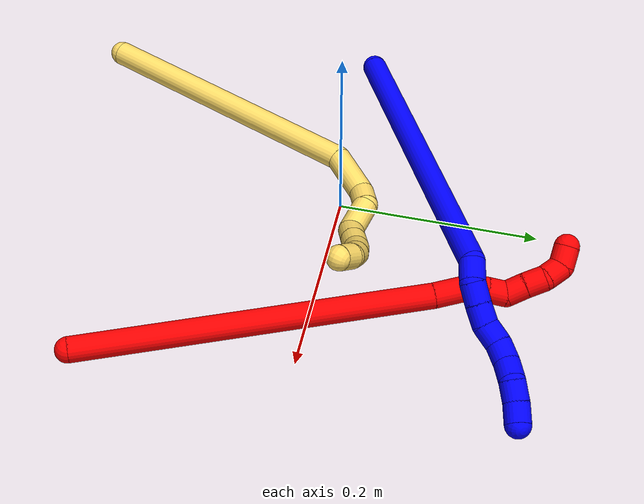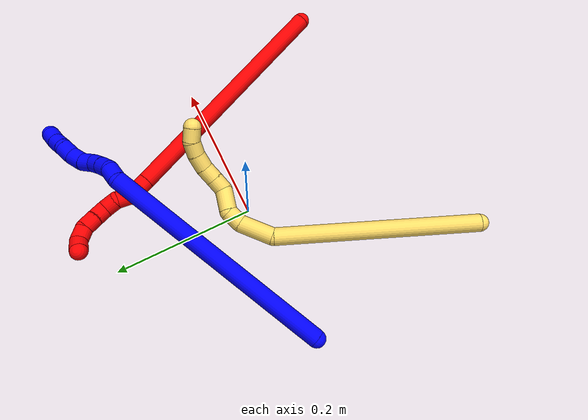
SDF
<sdf version="1.7">
 <world name="default">
  <model name="photoneo_s_sensor">
   <static>1</static>
   <pose>0 0 2 1.57079 1.57079 3.14159</pose>
   <link name="link">
    <inertial><mass>0.1</mass></inertial>
    <sensor name="sensor" type="depth">
     <update_rate>30</update_rate>
     <camera>
      <horizontal_fov>1.22</horizontal_fov>
      <image><width>1920</width><height>1200</height><format>B8G8R8</format></image>
      <clip><near>0.1</near><far>4</far></clip>
      <depth_camera><output>points</output></depth_camera>
     </camera>
     <plugin name="camera_plugin" filename="libgazebo_ros_depth_camera.so">
      <baseline>0.2</baseline>
      <alwaysOn>1</alwaysOn>
      <updateRate>0.0</updateRate>
      <cameraName>camera_ir</cameraName>
      <imageTopicName>/camera/color/image_raw</imageTopicName>
      <cameraInfoTopicName>/camera/color/camera_info</cameraInfoTopicName>
      <depthImageTopicName>/camera/depth/image_raw</depthImageTopicName>
      <depthImageCameraInfoTopicName>/camera/depth/camera_info</depthImageCameraInfoTopicName>
      <pointCloudTopicName>/camera/depth/points</pointCloudTopicName>
      <frameName>fr_optical</frameName>
      <pointCloudCutoff>0.1</pointCloudCutoff>
      <pointCloudCutoffMax>2.0</pointCloudCutoffMax>
      <distortionK1>0</distortionK1>
      <distortionK2>0</distortionK2>
      <distortionK3>0</distortionK3>
      <distortionT1>0</distortionT1>
      <distortionT2>0</distortionT2>
      <CxPrime>0</CxPrime>
      <Cx>0</Cx>
      <Cy>0</Cy>
      <focalLength>0</focalLength>
      <hackBaseline>0</hackBaseline>
     </plugin>
    </sensor>
   </link>
  </model>
  <model name="bin">
   <static>1</static>
   <link name="bottom">
    <collision name="collision-bottom">
     <pose>0 0 -0.01 0 -0 0</pose>
     <geometry><box><size>0.8 0.6 0.02</size></box></geometry>
     <surface>
      <friction><ode><mu>100</mu><mu2>100</mu2></ode></friction>
      <contact><collide_bitmask>65535</collide_bitmask></contact>
     </surface>
    </collision>
   </link>
   <link name="west_wall">
    <collision name="collision-west_wall">
     <pose>-0.41 0 0.1 0 -0 0</pose>
     <geometry><box><size>0.02 0.6 0.2</size></box></geometry>
     <surface>
      <friction><ode><mu>100</mu><mu2>100</mu2></ode></friction>
      <contact><collide_bitmask>65535</collide_bitmask></contact>
     </surface>
    </collision>
   </link>
   <link name="east_wall">
    <collision name="collision-east_wall">
     <pose>0.41 0 0.1 0 -0 0</pose>
     <geometry><box><size>0.02 0.6 0.2</size></box></geometry>
     <surface>
      <friction><ode><mu>100</mu><mu2>100</mu2></ode></friction>
      <contact><collide_bitmask>65535</collide_bitmask></contact>
     </surface>
    </collision>
   </link>
   <link name="south_wall">
    <collision name="collision-south_wall">
     <pose>0 -0.31 0.1 0 -0 0</pose>
     <geometry><box><size>0.8 0.02 0.2</size></box></geometry>
     <surface>
      <friction><ode><mu>100</mu><mu2>100</mu2></ode></friction>
      <contact><collide_bitmask>65535</collide_bitmask></contact>
     </surface>
    </collision>
   </link>
   <link name="north_wall">
    <collision name="collision-north_wall">
     <pose>0 0.31 0.1 0 -0 0</pose>
     <geometry><box><size>0.8 0.02 0.2</size></box></geometry>
     <surface>
      <friction><ode><mu>100</mu><mu2>100</mu2></ode></friction>
      <contact><collide_bitmask>65535</collide_bitmask></contact>
     </surface>
    </collision>
   </link>
  </model>
  <model name="1">
   <static>0</static>
   <link name="1">
    <collision name="collision-cylinder-e_1_1_4">
     <pose>0.005703 0.054563 0.159133 -0.330314 0.033888 -0.005649</pose>
     <geometry><cylinder><radius>0.0125</radius><length>0.336648</length></cylinder></geometry>
     <surface>
      <friction><ode><mu>1.16</mu><mu2>1.16</mu2><slip1>0</slip1><slip2>0</slip2></ode></friction>
      <contact><ode><kp>1e+06</kp><kd>1</kd><max_vel>0</max_vel><min_depth>0.001</min_depth></ode></contact>
     </surface>
    </collision>
    <visual name="visual-cylinder-e_1_1_4">
     <pose>0.005703 0.054563 0.159133 -0.330314 0.033888 -0.005649</pose>
     <geometry><cylinder><radius>0.0125</radius><length>0.336648</length></cylinder></geometry>
     <material><ambient>0 0 1 1</ambient></material>
    </visual>
    <collision name="collision-cylinder-e_2_4_5">
     <pose>0.012825 0.117011 0.325495 -0.828823 0.131842 -0.058063</pose>
     <geometry><cylinder><radius>0.0125</radius><length>0.021581</length></cylinder></geometry>
     <surface>
      <friction><ode><mu>1.16</mu><mu2>1.16</mu2><slip1>0</slip1><slip2>0</slip2></ode></friction>
      <contact><ode><kp>1e+06</kp><kd>1</kd><max_vel>0</max_vel><min_depth>0.001</min_depth></ode></contact>
     </surface>
    </collision>
    <visual name="visual-cylinder-e_2_4_5">
     <pose>0.012825 0.117011 0.325495 -0.828823 0.131842 -0.058063</pose>
     <geometry><cylinder><radius>0.0125</radius><length>0.021581</length></cylinder></geometry>
     <material><ambient>0 0 1 1</ambient></material>
    </visual>
    <collision name="collision-cylinder-e_3_5_6">
     <pose>0.011484 0.133621 0.337574 -1.06334 -0.269678 0.159245</pose>
     <geometry><cylinder><radius>0.0125</radius><length>0.020715</length></cylinder></geometry>
     <surface>
      <friction><ode><mu>1.16</mu><mu2>1.16</mu2><slip1>0</slip1><slip2>0</slip2></ode></friction>
      <contact><ode><kp>1e+06</kp><kd>1</kd><max_vel>0</max_vel><min_depth>0.001</min_depth></ode></contact>
     </surface>
    </collision>
    <visual name="visual-cylinder-e_3_5_6">
     <pose>0.011484 0.133621 0.337574 -1.06334 -0.269678 0.159245</pose>
     <geometry><cylinder><radius>0.0125</radius><length>0.020715</length></cylinder></geometry>
     <material><ambient>0 0 1 1</ambient></material>
    </visual>
    <collision name="collision-cylinder-e_4_6_7">
     <pose>0.005504 0.150555 0.34721 -1.04313 -0.326776 0.188903</pose>
     <geometry><cylinder><radius>0.0125</radius><length>0.020066</length></cylinder></geometry>
     <surface>
      <friction><ode><mu>1.16</mu><mu2>1.16</mu2><slip1>0</slip1><slip2>0</slip2></ode></friction>
      <contact><ode><kp>1e+06</kp><kd>1</kd><max_vel>0</max_vel><min_depth>0.001</min_depth></ode></contact>
     </surface>
    </collision>
    <visual name="visual-cylinder-e_4_6_7">
     <pose>0.005504 0.150555 0.34721 -1.04313 -0.326776 0.188903</pose>
     <geometry><cylinder><radius>0.0125</radius><length>0.020066</length></cylinder></geometry>
     <material><ambient>0 0 1 1</ambient></material>
    </visual>
    <collision name="collision-cylinder-e_5_7_8">
     <pose>-0.002696 0.164906 0.358583 -0.750225 -0.505043 0.202507</pose>
     <geometry><cylinder><radius>0.0125</radius><length>0.020583</length></cylinder></geometry>
     <surface>
      <friction><ode><mu>1.16</mu><mu2>1.16</mu2><slip1>0</slip1><slip2>0</slip2></ode></friction>
      <contact><ode><kp>1e+06</kp><kd>1</kd><max_vel>0</max_vel><min_depth>0.001</min_depth></ode></contact>
     </surface>
    </collision>
    <visual name="visual-cylinder-e_5_7_8">
     <pose>-0.002696 0.164906 0.358583 -0.750225 -0.505043 0.202507</pose>
     <geometry><cylinder><radius>0.0125</radius><length>0.020583</length></cylinder></geometry>
     <material><ambient>0 0 1 1</ambient></material>
    </visual>
    <collision name="collision-cylinder-e_6_8_9">
     <pose>-0.009244 0.176951 0.373323 -0.626921 -0.154556 0.050188</pose>
     <geometry><cylinder><radius>0.0125</radius><length>0.020372</length></cylinder></geometry>
     <surface>
      <friction><ode><mu>1.16</mu><mu2>1.16</mu2><slip1>0</slip1><slip2>0</slip2></ode></friction>
      <contact><ode><kp>1e+06</kp><kd>1</kd><max_vel>0</max_vel><min_depth>0.001</min_depth></ode></contact>
     </surface>
    </collision>
    <visual name="visual-cylinder-e_6_8_9">
     <pose>-0.009244 0.176951 0.373323 -0.626921 -0.154556 0.050188</pose>
     <geometry><cylinder><radius>0.0125</radius><length>0.020372</length></cylinder></geometry>
     <material><ambient>0 0 1 1</ambient></material>
    </visual>
    <collision name="collision-cylinder-e_7_9_10">
     <pose>-0.010248 0.187802 0.390148 -0.518202 0.056453 -0.014967</pose>
     <geometry><cylinder><radius>0.0125</radius><length>0.020003</length></cylinder></geometry>
     <surface>
      <friction><ode><mu>1.16</mu><mu2>1.16</mu2><slip1>0</slip1><slip2>0</slip2></ode></friction>
      <contact><ode><kp>1e+06</kp><kd>1</kd><max_vel>0</max_vel><min_depth>0.001</min_depth></ode></contact>
     </surface>
    </collision>
    <visual name="visual-cylinder-e_7_9_10">
     <pose>-0.010248 0.187802 0.390148 -0.518202 0.056453 -0.014967</pose>
     <geometry><cylinder><radius>0.0125</radius><length>0.020003</length></cylinder></geometry>
     <material><ambient>0 0 1 1</ambient></material>
    </visual>
    <collision name="collision-cylinder-e_8_10_11">
     <pose>-0.010796 0.200809 0.404636 -0.946002 -0.111456 0.057081</pose>
     <geometry><cylinder><radius>0.0125</radius><length>0.020002</length></cylinder></geometry>
     <surface>
      <friction><ode><mu>1.16</mu><mu2>1.16</mu2><slip1>0</slip1><slip2>0</slip2></ode></friction>
      <contact><ode><kp>1e+06</kp><kd>1</kd><max_vel>0</max_vel><min_depth>0.001</min_depth></ode></contact>
     </surface>
    </collision>
    <visual name="visual-cylinder-e_8_10_11">
     <pose>-0.010796 0.200809 0.404636 -0.946002 -0.111456 0.057081</pose>
     <geometry><cylinder><radius>0.0125</radius><length>0.020002</length></cylinder></geometry>
     <material><ambient>0 0 1 1</ambient></material>
    </visual>
    <collision name="collision-cylinder-e_9_11_2">
     <pose>-0.011468 0.216747 0.416619 -0.906298 0.043934 -0.021396</pose>
     <geometry><cylinder><radius>0.0125</radius><length>0.020031</length></cylinder></geometry>
     <surface>
      <friction><ode><mu>1.16</mu><mu2>1.16</mu2><slip1>0</slip1><slip2>0</slip2></ode></friction>
      <contact><ode><kp>1e+06</kp><kd>1</kd><max_vel>0</max_vel><min_depth>0.001</min_depth></ode></contact>
     </surface>
    </collision>
    <visual name="visual-cylinder-e_9_11_2">
     <pose>-0.011468 0.216747 0.416619 -0.906298 0.043934 -0.021396</pose>
     <geometry><cylinder><radius>0.0125</radius><length>0.020031</length></cylinder></geometry>
     <material><ambient>0 0 1 1</ambient></material>
    </visual>
    <collision name="collision-sphere-2">
     <pose>-0.011028 0.224623 0.42279 0 -0 0</pose>
     <geometry><sphere><radius>0.0125</radius></sphere></geometry>
     <surface>
      <friction><ode><mu>1.16</mu><mu2>1.16</mu2><slip1>0</slip1><slip2>0</slip2></ode></friction>
      <contact><ode><kp>1e+06</kp><kd>1</kd><max_vel>0</max_vel><min_depth>0.001</min_depth></ode></contact>
     </surface>
    </collision>
    <visual name="visual-sphere-2">
     <pose>-0.011028 0.224623 0.42279 0 -0 0</pose>
     <geometry><sphere><radius>0.0125</radius></sphere></geometry>
     <material><ambient>0 0 1 1</ambient></material>
    </visual>
    <collision name="collision-sphere-11">
     <pose>-0.011908 0.20887 0.410449 0 -0 0</pose>
     <geometry><sphere><radius>0.0125</radius></sphere></geometry>
     <surface>
      <friction><ode><mu>1.16</mu><mu2>1.16</mu2><slip1>0</slip1><slip2>0</slip2></ode></friction>
      <contact><ode><kp>1e+06</kp><kd>1</kd><max_vel>0</max_vel><min_depth>0.001</min_depth></ode></contact>
     </surface>
    </collision>
    <visual name="visual-sphere-11">
     <pose>-0.011908 0.20887 0.410449 0 -0 0</pose>
     <geometry><sphere><radius>0.0125</radius></sphere></geometry>
     <material><ambient>0 0 1 1</ambient></material>
    </visual>
    <collision name="collision-sphere-10">
     <pose>-0.009683 0.192748 0.398822 0 -0 0</pose>
     <geometry><sphere><radius>0.0125</radius></sphere></geometry>
     <surface>
      <friction><ode><mu>1.16</mu><mu2>1.16</mu2><slip1>0</slip1><slip2>0</slip2></ode></friction>
      <contact><ode><kp>1e+06</kp><kd>1</kd><max_vel>0</max_vel><min_depth>0.001</min_depth></ode></contact>
     </surface>
    </collision>
    <visual name="visual-sphere-10">
     <pose>-0.009683 0.192748 0.398822 0 -0 0</pose>
     <geometry><sphere><radius>0.0125</radius></sphere></geometry>
     <material><ambient>0 0 1 1</ambient></material>
    </visual>
    <collision name="collision-sphere-9">
     <pose>-0.010812 0.182856 0.381473 0 -0 0</pose>
     <geometry><sphere><radius>0.0125</radius></sphere></geometry>
     <surface>
      <friction><ode><mu>1.16</mu><mu2>1.16</mu2><slip1>0</slip1><slip2>0</slip2></ode></friction>
      <contact><ode><kp>1e+06</kp><kd>1</kd><max_vel>0</max_vel><min_depth>0.001</min_depth></ode></contact>
     </surface>
    </collision>
    <visual name="visual-sphere-9">
     <pose>-0.010812 0.182856 0.381473 0 -0 0</pose>
     <geometry><sphere><radius>0.0125</radius></sphere></geometry>
     <material><ambient>0 0 1 1</ambient></material>
    </visual>
    <collision name="collision-sphere-4">
     <pose>0.011406 0.109126 0.318266 0 -0 0</pose>
     <geometry><sphere><radius>0.0125</radius></sphere></geometry>
     <surface>
      <friction><ode><mu>1.16</mu><mu2>1.16</mu2><slip1>0</slip1><slip2>0</slip2></ode></friction>
      <contact><ode><kp>1e+06</kp><kd>1</kd><max_vel>0</max_vel><min_depth>0.001</min_depth></ode></contact>
     </surface>
    </collision>
    <visual name="visual-sphere-4">
     <pose>0.011406 0.109126 0.318266 0 -0 0</pose>
     <geometry><sphere><radius>0.0125</radius></sphere></geometry>
     <material><ambient>0 0 1 1</ambient></material>
    </visual>
    <collision name="collision-sphere-1">
     <geometry><sphere><radius>0.0125</radius></sphere></geometry>
     <surface>
      <friction><ode><mu>1.16</mu><mu2>1.16</mu2><slip1>0</slip1><slip2>0</slip2></ode></friction>
      <contact><ode><kp>1e+06</kp><kd>1</kd><max_vel>0</max_vel><min_depth>0.001</min_depth></ode></contact>
     </surface>
    </collision>
    <visual name="visual-sphere-1">
     <geometry><sphere><radius>0.0125</radius></sphere></geometry>
     <material><ambient>0 0 1 1</ambient></material>
    </visual>
    <collision name="collision-sphere-8">
     <pose>-0.007676 0.171047 0.365172 0 -0 0</pose>
     <geometry><sphere><radius>0.0125</radius></sphere></geometry>
     <surface>
      <friction><ode><mu>1.16</mu><mu2>1.16</mu2><slip1>0</slip1><slip2>0</slip2></ode></friction>
      <contact><ode><kp>1e+06</kp><kd>1</kd><max_vel>0</max_vel><min_depth>0.001</min_depth></ode></contact>
     </surface>
    </collision>
    <visual name="visual-sphere-8">
     <pose>-0.007676 0.171047 0.365172 0 -0 0</pose>
     <geometry><sphere><radius>0.0125</radius></sphere></geometry>
     <material><ambient>0 0 1 1</ambient></material>
    </visual>
    <collision name="collision-sphere-5">
     <pose>0.014243 0.124896 0.332723 0 -0 0</pose>
     <geometry><sphere><radius>0.0125</radius></sphere></geometry>
     <surface>
      <friction><ode><mu>1.16</mu><mu2>1.16</mu2><slip1>0</slip1><slip2>0</slip2></ode></friction>
      <contact><ode><kp>1e+06</kp><kd>1</kd><max_vel>0</max_vel><min_depth>0.001</min_depth></ode></contact>
     </surface>
    </collision>
    <visual name="visual-sphere-5">
     <pose>0.014243 0.124896 0.332723 0 -0 0</pose>
     <geometry><sphere><radius>0.0125</radius></sphere></geometry>
     <material><ambient>0 0 1 1</ambient></material>
    </visual>
    <collision name="collision-sphere-6">
     <pose>0.008724 0.142346 0.342426 0 -0 0</pose>
     <geometry><sphere><radius>0.0125</radius></sphere></geometry>
     <surface>
      <friction><ode><mu>1.16</mu><mu2>1.16</mu2><slip1>0</slip1><slip2>0</slip2></ode></friction>
      <contact><ode><kp>1e+06</kp><kd>1</kd><max_vel>0</max_vel><min_depth>0.001</min_depth></ode></contact>
     </surface>
    </collision>
    <visual name="visual-sphere-6">
     <pose>0.008724 0.142346 0.342426 0 -0 0</pose>
     <geometry><sphere><radius>0.0125</radius></sphere></geometry>
     <material><ambient>0 0 1 1</ambient></material>
    </visual>
    <collision name="collision-sphere-7">
     <pose>0.002283 0.158765 0.351994 0 -0 0</pose>
     <geometry><sphere><radius>0.0125</radius></sphere></geometry>
     <surface>
      <friction><ode><mu>1.16</mu><mu2>1.16</mu2><slip1>0</slip1><slip2>0</slip2></ode></friction>
      <contact><ode><kp>1e+06</kp><kd>1</kd><max_vel>0</max_vel><min_depth>0.001</min_depth></ode></contact>
     </surface>
    </collision>
    <visual name="visual-sphere-7">
     <pose>0.002283 0.158765 0.351994 0 -0 0</pose>
     <geometry><sphere><radius>0.0125</radius></sphere></geometry>
     <material><ambient>0 0 1 1</ambient></material>
    </visual>
    <inertial>
     <pose>0.003301 0.091593 0.22757 0 -0 0</pose>
     <mass>0.5</mass>
     <inertia>
      <ixx>0.003184</ixx>
      <ixy>0</ixy>
      <ixz>0</ixz>
      <iyy>0.003029</iyy>
      <iyz>0</iyz>
      <izz>-0.001117</izz>
     </inertia>
    </inertial>
   </link>
   <pose>-0.198157 -0.004172 0.011854 -1.0748 -0.347814 -1.12847</pose>
  </model>
  <model name="2">
   <static>0</static>
   <link name="2">
    <collision name="collision-cylinder-e_1_1_4">
     <pose>-0.096995 0.141886 0.027193 -1.38144 -0.591267 0.493214</pose>
     <geometry><cylinder><radius>0.0125</radius><length>0.348017</length></cylinder></geometry>
     <surface>
      <friction><ode><mu>1.16</mu><mu2>1.16</mu2><slip1>0</slip1><slip2>0</slip2></ode></friction>
      <contact><ode><kp>1e+06</kp><kd>1</kd><max_vel>0</max_vel><min_depth>0.001</min_depth></ode></contact>
     </surface>
    </collision>
    <visual name="visual-cylinder-e_1_1_4">
     <pose>-0.096995 0.141886 0.027193 -1.38144 -0.591267 0.493214</pose>
     <geometry><cylinder><radius>0.0125</radius><length>0.348017</length></cylinder></geometry>
     <material><ambient>1 0 0 1</ambient></material>
    </visual>
    <collision name="collision-cylinder-e_2_4_5">
     <pose>-0.202169 0.295216 0.058018 -1.26355 -0.598044 0.443768</pose>
     <geometry><cylinder><radius>0.0125</radius><length>0.029057</length></cylinder></geometry>
     <surface>
      <friction><ode><mu>1.16</mu><mu2>1.16</mu2><slip1>0</slip1><slip2>0</slip2></ode></friction>
      <contact><ode><kp>1e+06</kp><kd>1</kd><max_vel>0</max_vel><min_depth>0.001</min_depth></ode></contact>
     </surface>
    </collision>
    <visual name="visual-cylinder-e_2_4_5">
     <pose>-0.202169 0.295216 0.058018 -1.26355 -0.598044 0.443768</pose>
     <geometry><cylinder><radius>0.0125</radius><length>0.029057</length></cylinder></geometry>
     <material><ambient>1 0 0 1</ambient></material>
    </visual>
    <collision name="collision-cylinder-e_3_5_6">
     <pose>-0.211727 0.317009 0.06589 -1.18187 -0.122598 0.082308</pose>
     <geometry><cylinder><radius>0.0125</radius><length>0.022537</length></cylinder></geometry>
     <surface>
      <friction><ode><mu>1.16</mu><mu2>1.16</mu2><slip1>0</slip1><slip2>0</slip2></ode></friction>
      <contact><ode><kp>1e+06</kp><kd>1</kd><max_vel>0</max_vel><min_depth>0.001</min_depth></ode></contact>
     </surface>
    </collision>
    <visual name="visual-cylinder-e_3_5_6">
     <pose>-0.211727 0.317009 0.06589 -1.18187 -0.122598 0.082308</pose>
     <geometry><cylinder><radius>0.0125</radius><length>0.022537</length></cylinder></geometry>
     <material><ambient>1 0 0 1</ambient></material>
    </visual>
    <collision name="collision-cylinder-e_4_6_7">
     <pose>-0.216669 0.3367 0.068969 -1.69459 -0.36187 0.408443</pose>
     <geometry><cylinder><radius>0.0125</radius><length>0.020131</length></cylinder></geometry>
     <surface>
      <friction><ode><mu>1.16</mu><mu2>1.16</mu2><slip1>0</slip1><slip2>0</slip2></ode></friction>
      <contact><ode><kp>1e+06</kp><kd>1</kd><max_vel>0</max_vel><min_depth>0.001</min_depth></ode></contact>
     </surface>
    </collision>
    <visual name="visual-cylinder-e_4_6_7">
     <pose>-0.216669 0.3367 0.068969 -1.69459 -0.36187 0.408443</pose>
     <geometry><cylinder><radius>0.0125</radius><length>0.020131</length></cylinder></geometry>
     <material><ambient>1 0 0 1</ambient></material>
    </visual>
    <collision name="collision-cylinder-e_5_7_8">
     <pose>-0.225619 0.352929 0.072687 -0.954333 -0.567995 0.299559</pose>
     <geometry><cylinder><radius>0.0125</radius><length>0.020029</length></cylinder></geometry>
     <surface>
      <friction><ode><mu>1.16</mu><mu2>1.16</mu2><slip1>0</slip1><slip2>0</slip2></ode></friction>
      <contact><ode><kp>1e+06</kp><kd>1</kd><max_vel>0</max_vel><min_depth>0.001</min_depth></ode></contact>
     </surface>
    </collision>
    <visual name="visual-cylinder-e_5_7_8">
     <pose>-0.225619 0.352929 0.072687 -0.954333 -0.567995 0.299559</pose>
     <geometry><cylinder><radius>0.0125</radius><length>0.020029</length></cylinder></geometry>
     <material><ambient>1 0 0 1</ambient></material>
    </visual>
    <collision name="collision-cylinder-e_6_8_9">
     <pose>-0.236511 0.367056 0.081752 -1.04669 -0.582209 0.342379</pose>
     <geometry><cylinder><radius>0.0125</radius><length>0.02002</length></cylinder></geometry>
     <surface>
      <friction><ode><mu>1.16</mu><mu2>1.16</mu2><slip1>0</slip1><slip2>0</slip2></ode></friction>
      <contact><ode><kp>1e+06</kp><kd>1</kd><max_vel>0</max_vel><min_depth>0.001</min_depth></ode></contact>
     </surface>
    </collision>
    <visual name="visual-cylinder-e_6_8_9">
     <pose>-0.236511 0.367056 0.081752 -1.04669 -0.582209 0.342379</pose>
     <geometry><cylinder><radius>0.0125</radius><length>0.02002</length></cylinder></geometry>
     <material><ambient>1 0 0 1</ambient></material>
    </visual>
    <collision name="collision-cylinder-e_7_9_10">
     <pose>-0.250334 0.37913 0.088871 -1.02536 -0.973641 0.57913</pose>
     <geometry><cylinder><radius>0.0125</radius><length>0.020121</length></cylinder></geometry>
     <surface>
      <friction><ode><mu>1.16</mu><mu2>1.16</mu2><slip1>0</slip1><slip2>0</slip2></ode></friction>
      <contact><ode><kp>1e+06</kp><kd>1</kd><max_vel>0</max_vel><min_depth>0.001</min_depth></ode></contact>
     </surface>
    </collision>
    <visual name="visual-cylinder-e_7_9_10">
     <pose>-0.250334 0.37913 0.088871 -1.02536 -0.973641 0.57913</pose>
     <geometry><cylinder><radius>0.0125</radius><length>0.020121</length></cylinder></geometry>
     <material><ambient>1 0 0 1</ambient></material>
    </visual>
    <collision name="collision-cylinder-e_8_10_2">
     <pose>-0.265964 0.382803 0.098594 0.169744 -0.815198 -0.073435</pose>
     <geometry><cylinder><radius>0.0125</radius><length>0.020088</length></cylinder></geometry>
     <surface>
      <friction><ode><mu>1.16</mu><mu2>1.16</mu2><slip1>0</slip1><slip2>0</slip2></ode></friction>
      <contact><ode><kp>1e+06</kp><kd>1</kd><max_vel>0</max_vel><min_depth>0.001</min_depth></ode></contact>
     </surface>
    </collision>
    <visual name="visual-cylinder-e_8_10_2">
     <pose>-0.265964 0.382803 0.098594 0.169744 -0.815198 -0.073435</pose>
     <geometry><cylinder><radius>0.0125</radius><length>0.020088</length></cylinder></geometry>
     <material><ambient>1 0 0 1</ambient></material>
    </visual>
    <collision name="collision-sphere-2">
     <pose>-0.273275 0.38164 0.105382 0 -0 0</pose>
     <geometry><sphere><radius>0.0125</radius></sphere></geometry>
     <surface>
      <friction><ode><mu>1.16</mu><mu2>1.16</mu2><slip1>0</slip1><slip2>0</slip2></ode></friction>
      <contact><ode><kp>1e+06</kp><kd>1</kd><max_vel>0</max_vel><min_depth>0.001</min_depth></ode></contact>
     </surface>
    </collision>
    <visual name="visual-sphere-2">
     <pose>-0.273275 0.38164 0.105382 0 -0 0</pose>
     <geometry><sphere><radius>0.0125</radius></sphere></geometry>
     <material><ambient>1 0 0 1</ambient></material>
    </visual>
    <collision name="collision-sphere-10">
     <pose>-0.258654 0.383967 0.091806 0 -0 0</pose>
     <geometry><sphere><radius>0.0125</radius></sphere></geometry>
     <surface>
      <friction><ode><mu>1.16</mu><mu2>1.16</mu2><slip1>0</slip1><slip2>0</slip2></ode></friction>
      <contact><ode><kp>1e+06</kp><kd>1</kd><max_vel>0</max_vel><min_depth>0.001</min_depth></ode></contact>
     </surface>
    </collision>
    <visual name="visual-sphere-10">
     <pose>-0.258654 0.383967 0.091806 0 -0 0</pose>
     <geometry><sphere><radius>0.0125</radius></sphere></geometry>
     <material><ambient>1 0 0 1</ambient></material>
    </visual>
    <collision name="collision-sphere-9">
     <pose>-0.242015 0.374294 0.085936 0 -0 0</pose>
     <geometry><sphere><radius>0.0125</radius></sphere></geometry>
     <surface>
      <friction><ode><mu>1.16</mu><mu2>1.16</mu2><slip1>0</slip1><slip2>0</slip2></ode></friction>
      <contact><ode><kp>1e+06</kp><kd>1</kd><max_vel>0</max_vel><min_depth>0.001</min_depth></ode></contact>
     </surface>
    </collision>
    <visual name="visual-sphere-9">
     <pose>-0.242015 0.374294 0.085936 0 -0 0</pose>
     <geometry><sphere><radius>0.0125</radius></sphere></geometry>
     <material><ambient>1 0 0 1</ambient></material>
    </visual>
    <collision name="collision-sphere-4">
     <pose>-0.193989 0.283771 0.054387 0 -0 0</pose>
     <geometry><sphere><radius>0.0125</radius></sphere></geometry>
     <surface>
      <friction><ode><mu>1.16</mu><mu2>1.16</mu2><slip1>0</slip1><slip2>0</slip2></ode></friction>
      <contact><ode><kp>1e+06</kp><kd>1</kd><max_vel>0</max_vel><min_depth>0.001</min_depth></ode></contact>
     </surface>
    </collision>
    <visual name="visual-sphere-4">
     <pose>-0.193989 0.283771 0.054387 0 -0 0</pose>
     <geometry><sphere><radius>0.0125</radius></sphere></geometry>
     <material><ambient>1 0 0 1</ambient></material>
    </visual>
    <collision name="collision-sphere-1">
     <geometry><sphere><radius>0.0125</radius></sphere></geometry>
     <surface>
      <friction><ode><mu>1.16</mu><mu2>1.16</mu2><slip1>0</slip1><slip2>0</slip2></ode></friction>
      <contact><ode><kp>1e+06</kp><kd>1</kd><max_vel>0</max_vel><min_depth>0.001</min_depth></ode></contact>
     </surface>
    </collision>
    <visual name="visual-sphere-1">
     <geometry><sphere><radius>0.0125</radius></sphere></geometry>
     <material><ambient>1 0 0 1</ambient></material>
    </visual>
    <collision name="collision-sphere-8">
     <pose>-0.231007 0.359817 0.077568 0 -0 0</pose>
     <geometry><sphere><radius>0.0125</radius></sphere></geometry>
     <surface>
      <friction><ode><mu>1.16</mu><mu2>1.16</mu2><slip1>0</slip1><slip2>0</slip2></ode></friction>
      <contact><ode><kp>1e+06</kp><kd>1</kd><max_vel>0</max_vel><min_depth>0.001</min_depth></ode></contact>
     </surface>
    </collision>
    <visual name="visual-sphere-8">
     <pose>-0.231007 0.359817 0.077568 0 -0 0</pose>
     <geometry><sphere><radius>0.0125</radius></sphere></geometry>
     <material><ambient>1 0 0 1</ambient></material>
    </visual>
    <collision name="collision-sphere-5">
     <pose>-0.210349 0.30666 0.061649 0 -0 0</pose>
     <geometry><sphere><radius>0.0125</radius></sphere></geometry>
     <surface>
      <friction><ode><mu>1.16</mu><mu2>1.16</mu2><slip1>0</slip1><slip2>0</slip2></ode></friction>
      <contact><ode><kp>1e+06</kp><kd>1</kd><max_vel>0</max_vel><min_depth>0.001</min_depth></ode></contact>
     </surface>
    </collision>
    <visual name="visual-sphere-5">
     <pose>-0.210349 0.30666 0.061649 0 -0 0</pose>
     <geometry><sphere><radius>0.0125</radius></sphere></geometry>
     <material><ambient>1 0 0 1</ambient></material>
    </visual>
    <collision name="collision-sphere-6">
     <pose>-0.213105 0.327358 0.070131 0 -0 0</pose>
     <geometry><sphere><radius>0.0125</radius></sphere></geometry>
     <surface>
      <friction><ode><mu>1.16</mu><mu2>1.16</mu2><slip1>0</slip1><slip2>0</slip2></ode></friction>
      <contact><ode><kp>1e+06</kp><kd>1</kd><max_vel>0</max_vel><min_depth>0.001</min_depth></ode></contact>
     </surface>
    </collision>
    <visual name="visual-sphere-6">
     <pose>-0.213105 0.327358 0.070131 0 -0 0</pose>
     <geometry><sphere><radius>0.0125</radius></sphere></geometry>
     <material><ambient>1 0 0 1</ambient></material>
    </visual>
    <collision name="collision-sphere-7">
     <pose>-0.220232 0.346041 0.067806 0 -0 0</pose>
     <geometry><sphere><radius>0.0125</radius></sphere></geometry>
     <surface>
      <friction><ode><mu>1.16</mu><mu2>1.16</mu2><slip1>0</slip1><slip2>0</slip2></ode></friction>
      <contact><ode><kp>1e+06</kp><kd>1</kd><max_vel>0</max_vel><min_depth>0.001</min_depth></ode></contact>
     </surface>
    </collision>
    <visual name="visual-sphere-7">
     <pose>-0.220232 0.346041 0.067806 0 -0 0</pose>
     <geometry><sphere><radius>0.0125</radius></sphere></geometry>
     <material><ambient>1 0 0 1</ambient></material>
    </visual>
    <inertial>
     <pose>-0.136794 0.203229 0.041768 0 -0 0</pose>
     <mass>0.5</mass>
     <inertia>
      <ixx>0.003956</ixx>
      <ixy>0</ixy>
      <ixz>0</ixz>
      <iyy>0.002924</iyy>
      <iyz>0</iyz>
      <izz>-0.000903</izz>
     </inertia>
    </inertial>
   </link>
   <pose>0.239835 -0.206436 0.013016 -0.104419 -0.13346 -0.18892</pose>
  </model>
  <model name="5">
   <static>0</static>
   <link name="5">
    <collision name="collision-cylinder-e_1_1_4">
     <pose>-7.8e-05 -0.002141 -0.144204 3.12675 -0.000541 -0.072861</pose>
     <geometry><cylinder><radius>0.0125</radius><length>0.288439</length></cylinder></geometry>
     <surface>
      <friction><ode><mu>1.16</mu><mu2>1.16</mu2><slip1>0</slip1><slip2>0</slip2></ode></friction>
      <contact><ode><kp>1e+06</kp><kd>1</kd><max_vel>0</max_vel><min_depth>0.001</min_depth></ode></contact>
     </surface>
    </collision>
    <visual name="visual-cylinder-e_1_1_4">
     <pose>-7.8e-05 -0.002141 -0.144204 3.12675 -0.000541 -0.072861</pose>
     <geometry><cylinder><radius>0.0125</radius><length>0.288439</length></cylinder></geometry>
     <material><ambient>1 0.858824 0.4 1</ambient></material>
    </visual>
    <collision name="collision-cylinder-e_2_4_5">
     <pose>0.011639 -0.004563 -0.310457 3.12885 0.491171 3.09077</pose>
     <geometry><cylinder><radius>0.0125</radius><length>0.050016</length></cylinder></geometry>
     <surface>
      <friction><ode><mu>1.16</mu><mu2>1.16</mu2><slip1>0</slip1><slip2>0</slip2></ode></friction>
      <contact><ode><kp>1e+06</kp><kd>1</kd><max_vel>0</max_vel><min_depth>0.001</min_depth></ode></contact>
     </surface>
    </collision>
    <visual name="visual-cylinder-e_2_4_5">
     <pose>0.011639 -0.004563 -0.310457 3.12885 0.491171 3.09077</pose>
     <geometry><cylinder><radius>0.0125</radius><length>0.050016</length></cylinder></geometry>
     <material><ambient>1 0.858824 0.4 1</ambient></material>
    </visual>
    <collision name="collision-cylinder-e_3_5_6">
     <pose>0.030966 -0.00095 -0.340368 -2.68169 0.709427 -2.0143</pose>
     <geometry><cylinder><radius>0.0125</radius><length>0.023125</length></cylinder></geometry>
     <surface>
      <friction><ode><mu>1.16</mu><mu2>1.16</mu2><slip1>0</slip1><slip2>0</slip2></ode></friction>
      <contact><ode><kp>1e+06</kp><kd>1</kd><max_vel>0</max_vel><min_depth>0.001</min_depth></ode></contact>
     </surface>
    </collision>
    <visual name="visual-cylinder-e_3_5_6">
     <pose>0.030966 -0.00095 -0.340368 -2.68169 0.709427 -2.0143</pose>
     <geometry><cylinder><radius>0.0125</radius><length>0.023125</length></cylinder></geometry>
     <material><ambient>1 0.858824 0.4 1</ambient></material>
    </visual>
    <collision name="collision-cylinder-e_4_6_7">
     <pose>0.055421 0.005026 -0.350807 -2.46229 1.37743 -2.33067</pose>
     <geometry><cylinder><radius>0.0125</radius><length>0.03449</length></cylinder></geometry>
     <surface>
      <friction><ode><mu>1.16</mu><mu2>1.16</mu2><slip1>0</slip1><slip2>0</slip2></ode></friction>
      <contact><ode><kp>1e+06</kp><kd>1</kd><max_vel>0</max_vel><min_depth>0.001</min_depth></ode></contact>
     </surface>
    </collision>
    <visual name="visual-cylinder-e_4_6_7">
     <pose>0.055421 0.005026 -0.350807 -2.46229 1.37743 -2.33067</pose>
     <geometry><cylinder><radius>0.0125</radius><length>0.03449</length></cylinder></geometry>
     <material><ambient>1 0.858824 0.4 1</ambient></material>
    </visual>
    <collision name="collision-cylinder-e_5_7_8">
     <pose>0.078505 0.012678 -0.359729 -2.42103 0.630431 -1.42695</pose>
     <geometry><cylinder><radius>0.0125</radius><length>0.020901</length></cylinder></geometry>
     <surface>
      <friction><ode><mu>1.16</mu><mu2>1.16</mu2><slip1>0</slip1><slip2>0</slip2></ode></friction>
      <contact><ode><kp>1e+06</kp><kd>1</kd><max_vel>0</max_vel><min_depth>0.001</min_depth></ode></contact>
     </surface>
    </collision>
    <visual name="visual-cylinder-e_5_7_8">
     <pose>0.078505 0.012678 -0.359729 -2.42103 0.630431 -1.42695</pose>
     <geometry><cylinder><radius>0.0125</radius><length>0.020901</length></cylinder></geometry>
     <material><ambient>1 0.858824 0.4 1</ambient></material>
    </visual>
    <collision name="collision-cylinder-e_6_8_9">
     <pose>0.090568 0.023656 -0.372356 -2.4309 0.618727 -1.42203</pose>
     <geometry><cylinder><radius>0.0125</radius><length>0.020354</length></cylinder></geometry>
     <surface>
      <friction><ode><mu>1.16</mu><mu2>1.16</mu2><slip1>0</slip1><slip2>0</slip2></ode></friction>
      <contact><ode><kp>1e+06</kp><kd>1</kd><max_vel>0</max_vel><min_depth>0.001</min_depth></ode></contact>
     </surface>
    </collision>
    <visual name="visual-cylinder-e_6_8_9">
     <pose>0.090568 0.023656 -0.372356 -2.4309 0.618727 -1.42203</pose>
     <geometry><cylinder><radius>0.0125</radius><length>0.020354</length></cylinder></geometry>
     <material><ambient>1 0.858824 0.4 1</ambient></material>
    </visual>
    <collision name="collision-cylinder-e_7_9_10">
     <pose>0.102757 0.037017 -0.383597 -2.12831 0.590874 -1.00324</pose>
     <geometry><cylinder><radius>0.0125</radius><length>0.022569</length></cylinder></geometry>
     <surface>
      <friction><ode><mu>1.16</mu><mu2>1.16</mu2><slip1>0</slip1><slip2>0</slip2></ode></friction>
      <contact><ode><kp>1e+06</kp><kd>1</kd><max_vel>0</max_vel><min_depth>0.001</min_depth></ode></contact>
     </surface>
    </collision>
    <visual name="visual-cylinder-e_7_9_10">
     <pose>0.102757 0.037017 -0.383597 -2.12831 0.590874 -1.00324</pose>
     <geometry><cylinder><radius>0.0125</radius><length>0.022569</length></cylinder></geometry>
     <material><ambient>1 0.858824 0.4 1</ambient></material>
    </visual>
    <collision name="collision-cylinder-e_8_10_11">
     <pose>0.114743 0.052883 -0.390965 -1.86639 0.603192 -0.79512</pose>
     <geometry><cylinder><radius>0.0125</radius><length>0.020091</length></cylinder></geometry>
     <surface>
      <friction><ode><mu>1.16</mu><mu2>1.16</mu2><slip1>0</slip1><slip2>0</slip2></ode></friction>
      <contact><ode><kp>1e+06</kp><kd>1</kd><max_vel>0</max_vel><min_depth>0.001</min_depth></ode></contact>
     </surface>
    </collision>
    <visual name="visual-cylinder-e_8_10_11">
     <pose>0.114743 0.052883 -0.390965 -1.86639 0.603192 -0.79512</pose>
     <geometry><cylinder><radius>0.0125</radius><length>0.020091</length></cylinder></geometry>
     <material><ambient>1 0.858824 0.4 1</ambient></material>
    </visual>
    <collision name="collision-cylinder-e_9_11_2">
     <pose>0.127212 0.068043 -0.392035 -1.38796 0.743151 -0.627071</pose>
     <geometry><cylinder><radius>0.0125</radius><length>0.020015</length></cylinder></geometry>
     <surface>
      <friction><ode><mu>1.16</mu><mu2>1.16</mu2><slip1>0</slip1><slip2>0</slip2></ode></friction>
      <contact><ode><kp>1e+06</kp><kd>1</kd><max_vel>0</max_vel><min_depth>0.001</min_depth></ode></contact>
     </surface>
    </collision>
    <visual name="visual-cylinder-e_9_11_2">
     <pose>0.127212 0.068043 -0.392035 -1.38796 0.743151 -0.627071</pose>
     <geometry><cylinder><radius>0.0125</radius><length>0.020015</length></cylinder></geometry>
     <material><ambient>1 0.858824 0.4 1</ambient></material>
    </visual>
    <collision name="collision-sphere-2">
     <pose>0.133984 0.075289 -0.390695 0 -0 0</pose>
     <geometry><sphere><radius>0.0125</radius></sphere></geometry>
     <surface>
      <friction><ode><mu>1.16</mu><mu2>1.16</mu2><slip1>0</slip1><slip2>0</slip2></ode></friction>
      <contact><ode><kp>1e+06</kp><kd>1</kd><max_vel>0</max_vel><min_depth>0.001</min_depth></ode></contact>
     </surface>
    </collision>
    <visual name="visual-sphere-2">
     <pose>0.133984 0.075289 -0.390695 0 -0 0</pose>
     <geometry><sphere><radius>0.0125</radius></sphere></geometry>
     <material><ambient>1 0.858824 0.4 1</ambient></material>
    </visual>
    <collision name="collision-sphere-11">
     <pose>0.120441 0.060797 -0.393375 0 -0 0</pose>
     <geometry><sphere><radius>0.0125</radius></sphere></geometry>
     <surface>
      <friction><ode><mu>1.16</mu><mu2>1.16</mu2><slip1>0</slip1><slip2>0</slip2></ode></friction>
      <contact><ode><kp>1e+06</kp><kd>1</kd><max_vel>0</max_vel><min_depth>0.001</min_depth></ode></contact>
     </surface>
    </collision>
    <visual name="visual-sphere-11">
     <pose>0.120441 0.060797 -0.393375 0 -0 0</pose>
     <geometry><sphere><radius>0.0125</radius></sphere></geometry>
     <material><ambient>1 0.858824 0.4 1</ambient></material>
    </visual>
    <collision name="collision-sphere-10">
     <pose>0.109044 0.044969 -0.388555 0 -0 0</pose>
     <geometry><sphere><radius>0.0125</radius></sphere></geometry>
     <surface>
      <friction><ode><mu>1.16</mu><mu2>1.16</mu2><slip1>0</slip1><slip2>0</slip2></ode></friction>
      <contact><ode><kp>1e+06</kp><kd>1</kd><max_vel>0</max_vel><min_depth>0.001</min_depth></ode></contact>
     </surface>
    </collision>
    <visual name="visual-sphere-10">
     <pose>0.109044 0.044969 -0.388555 0 -0 0</pose>
     <geometry><sphere><radius>0.0125</radius></sphere></geometry>
     <material><ambient>1 0.858824 0.4 1</ambient></material>
    </visual>
    <collision name="collision-sphere-9">
     <pose>0.096471 0.029064 -0.378639 0 -0 0</pose>
     <geometry><sphere><radius>0.0125</radius></sphere></geometry>
     <surface>
      <friction><ode><mu>1.16</mu><mu2>1.16</mu2><slip1>0</slip1><slip2>0</slip2></ode></friction>
      <contact><ode><kp>1e+06</kp><kd>1</kd><max_vel>0</max_vel><min_depth>0.001</min_depth></ode></contact>
     </surface>
    </collision>
    <visual name="visual-sphere-9">
     <pose>0.096471 0.029064 -0.378639 0 -0 0</pose>
     <geometry><sphere><radius>0.0125</radius></sphere></geometry>
     <material><ambient>1 0.858824 0.4 1</ambient></material>
    </visual>
    <collision name="collision-sphere-4">
     <pose>-0.000156 -0.004282 -0.288407 0 -0 0</pose>
     <geometry><sphere><radius>0.0125</radius></sphere></geometry>
     <surface>
      <friction><ode><mu>1.16</mu><mu2>1.16</mu2><slip1>0</slip1><slip2>0</slip2></ode></friction>
      <contact><ode><kp>1e+06</kp><kd>1</kd><max_vel>0</max_vel><min_depth>0.001</min_depth></ode></contact>
     </surface>
    </collision>
    <visual name="visual-sphere-4">
     <pose>-0.000156 -0.004282 -0.288407 0 -0 0</pose>
     <geometry><sphere><radius>0.0125</radius></sphere></geometry>
     <material><ambient>1 0.858824 0.4 1</ambient></material>
    </visual>
    <collision name="collision-sphere-1">
     <geometry><sphere><radius>0.0125</radius></sphere></geometry>
     <surface>
      <friction><ode><mu>1.16</mu><mu2>1.16</mu2><slip1>0</slip1><slip2>0</slip2></ode></friction>
      <contact><ode><kp>1e+06</kp><kd>1</kd><max_vel>0</max_vel><min_depth>0.001</min_depth></ode></contact>
     </surface>
    </collision>
    <visual name="visual-sphere-1">
     <geometry><sphere><radius>0.0125</radius></sphere></geometry>
     <material><ambient>1 0.858824 0.4 1</ambient></material>
    </visual>
    <collision name="collision-sphere-8">
     <pose>0.084666 0.018248 -0.366072 0 -0 0</pose>
     <geometry><sphere><radius>0.0125</radius></sphere></geometry>
     <surface>
      <friction><ode><mu>1.16</mu><mu2>1.16</mu2><slip1>0</slip1><slip2>0</slip2></ode></friction>
      <contact><ode><kp>1e+06</kp><kd>1</kd><max_vel>0</max_vel><min_depth>0.001</min_depth></ode></contact>
     </surface>
    </collision>
    <visual name="visual-sphere-8">
     <pose>0.084666 0.018248 -0.366072 0 -0 0</pose>
     <geometry><sphere><radius>0.0125</radius></sphere></geometry>
     <material><ambient>1 0.858824 0.4 1</ambient></material>
    </visual>
    <collision name="collision-sphere-5">
     <pose>0.023434 -0.004844 -0.332507 0 -0 0</pose>
     <geometry><sphere><radius>0.0125</radius></sphere></geometry>
     <surface>
      <friction><ode><mu>1.16</mu><mu2>1.16</mu2><slip1>0</slip1><slip2>0</slip2></ode></friction>
      <contact><ode><kp>1e+06</kp><kd>1</kd><max_vel>0</max_vel><min_depth>0.001</min_depth></ode></contact>
     </surface>
    </collision>
    <visual name="visual-sphere-5">
     <pose>0.023434 -0.004844 -0.332507 0 -0 0</pose>
     <geometry><sphere><radius>0.0125</radius></sphere></geometry>
     <material><ambient>1 0.858824 0.4 1</ambient></material>
    </visual>
    <collision name="collision-sphere-6">
     <pose>0.038498 0.002944 -0.348229 0 -0 0</pose>
     <geometry><sphere><radius>0.0125</radius></sphere></geometry>
     <surface>
      <friction><ode><mu>1.16</mu><mu2>1.16</mu2><slip1>0</slip1><slip2>0</slip2></ode></friction>
      <contact><ode><kp>1e+06</kp><kd>1</kd><max_vel>0</max_vel><min_depth>0.001</min_depth></ode></contact>
     </surface>
    </collision>
    <visual name="visual-sphere-6">
     <pose>0.038498 0.002944 -0.348229 0 -0 0</pose>
     <geometry><sphere><radius>0.0125</radius></sphere></geometry>
     <material><ambient>1 0.858824 0.4 1</ambient></material>
    </visual>
    <collision name="collision-sphere-7">
     <pose>0.072345 0.007108 -0.353386 0 -0 0</pose>
     <geometry><sphere><radius>0.0125</radius></sphere></geometry>
     <surface>
      <friction><ode><mu>1.16</mu><mu2>1.16</mu2><slip1>0</slip1><slip2>0</slip2></ode></friction>
      <contact><ode><kp>1e+06</kp><kd>1</kd><max_vel>0</max_vel><min_depth>0.001</min_depth></ode></contact>
     </surface>
    </collision>
    <visual name="visual-sphere-7">
     <pose>0.072345 0.007108 -0.353386 0 -0 0</pose>
     <geometry><sphere><radius>0.0125</radius></sphere></geometry>
     <material><ambient>1 0.858824 0.4 1</ambient></material>
    </visual>
    <inertial>
     <pose>0.027684 0.006624 -0.233097 0 -0 0</pose>
     <mass>0.5</mass>
     <inertia>
      <ixx>0.001854</ixx>
      <ixy>0</ixy>
      <ixz>0</ixz>
      <iyy>-0.002132</iyy>
      <iyz>0</iyz>
      <izz>-2.2e-05</izz>
     </inertia>
    </inertial>
   </link>
   <pose>-0.158912 -0.281192 0.012032 1.59802 0.200202 -0.379101</pose>
  </model>
 </world>
</sdf>
